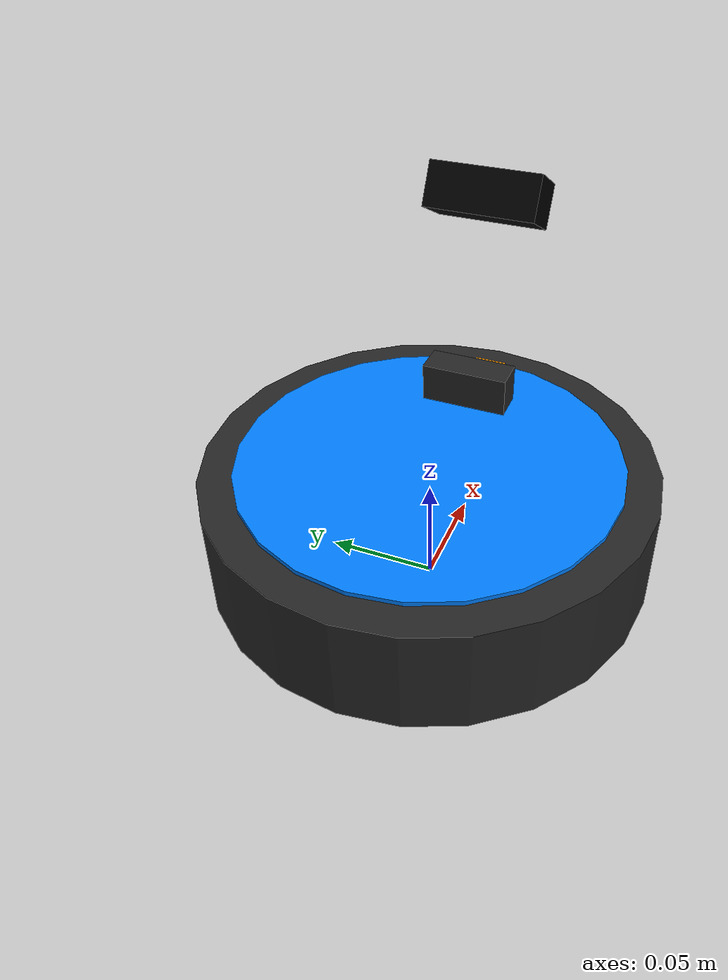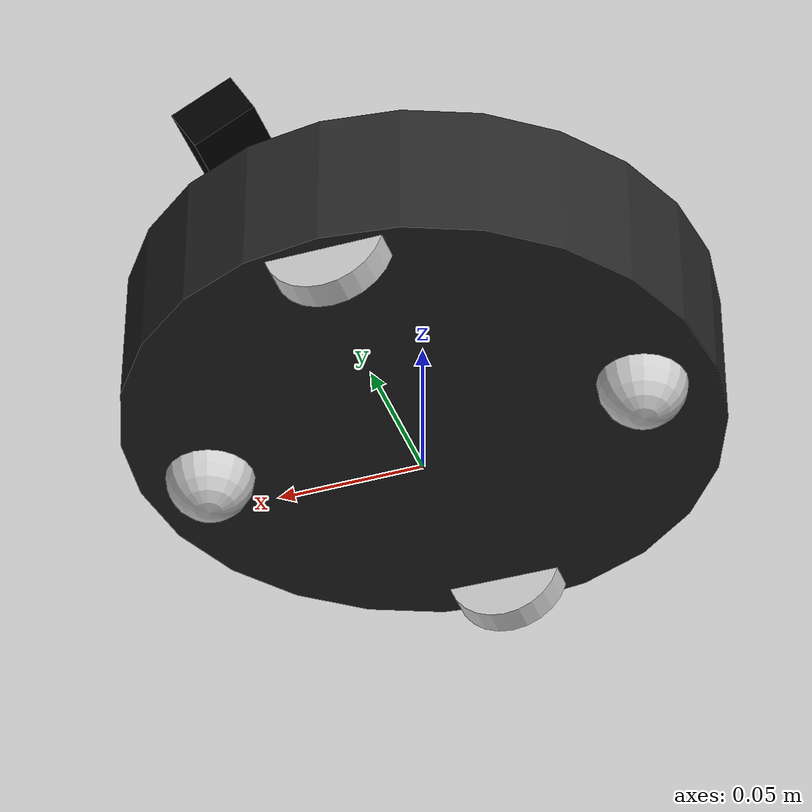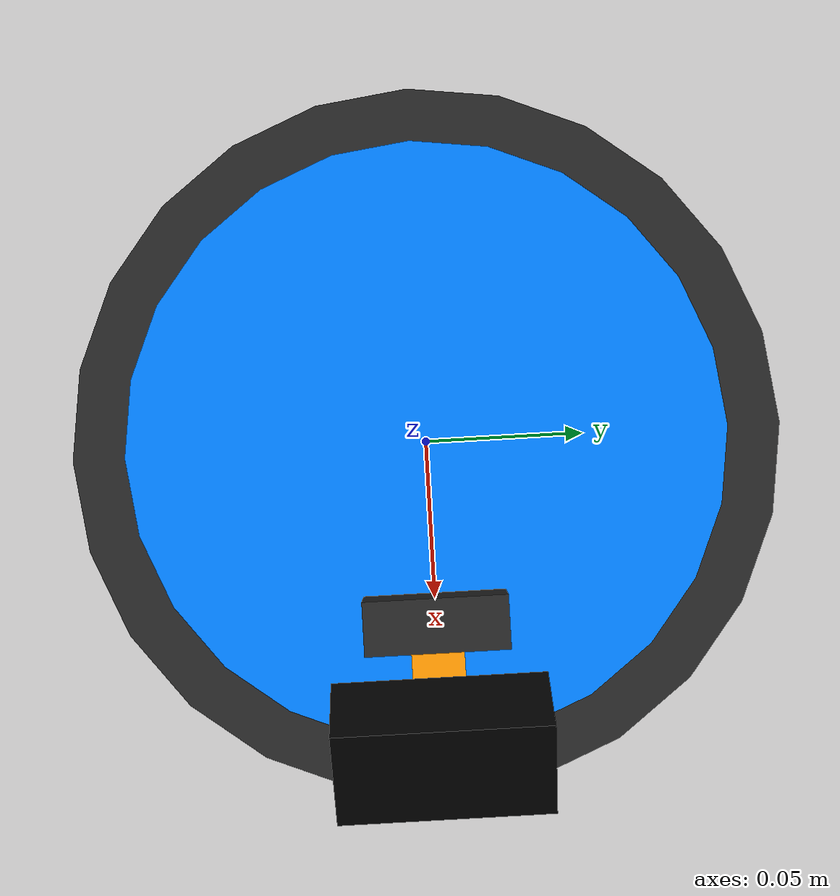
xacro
<?xml version="1.0"?>
<robot name="disc_robot" xmlns:xacro="http://www.ros.org/wiki/xacro">

  <!-- Include properties and gazebo macros -->
  <xacro:include filename="disc_robot_properties.xacro" />
  <xacro:include filename="disc_robot_gazebo.xacro" />

  <!-- Helper Inertia Macros -->
  <xacro:macro name="cylinder_inertia" params="m r h">
    <inertial>
      <mass value="${m}" />
      <origin xyz="0 0 0" rpy="0 0 0" />
      <inertia ixx="${(m/12.0) * (3.0*r*r + h*h)}" ixy="0.0" ixz="0.0"
               iyy="${(m/12.0) * (3.0*r*r + h*h)}" iyz="0.0"
               izz="${(m/2.0) * (r*r)}" />
    </inertial>
  </xacro:macro>

  <xacro:macro name="sphere_inertia" params="m r">
    <inertial>
      <mass value="${m}" />
      <origin xyz="0 0 0" rpy="0 0 0" />
      <inertia ixx="${(2.0/5.0) * m * r * r}" ixy="0.0" ixz="0.0"
               iyy="${(2.0/5.0) * m * r * r}" iyz="0.0"
               izz="${(2.0/5.0) * m * r * r}" />
    </inertial>
  </xacro:macro>

  <!-- base_footprint standard ROS reference frame on the ground below the robot center -->
  <link name="base_footprint" />

  <!-- base_link main cylinder body of the vacuum cleaner robot -->
  <link name="base_link">
    <!-- Visual representation of the robot body -->
    <visual>
      <origin xyz="0 0 0" rpy="0 0 0" />
      <geometry>
        <cylinder radius="${robot_radius}" length="${robot_height}" />
      </geometry>
      <material name="dark_grey" />
    </visual>

    <!-- Collision geometry -->
    <collision>
      <origin xyz="0 0 0" rpy="0 0 0" />
      <geometry>
        <cylinder radius="${robot_radius}" length="${robot_height}" />
      </geometry>
    </collision>

    <!-- Inertial properties -->
    <xacro:cylinder_inertia m="${robot_mass}" r="${robot_radius}" h="${robot_height}" />
  </link>

  <!-- Joint connecting base_footprint to base_link -->
  <joint name="base_joint" type="fixed">
    <parent link="base_footprint" />
    <child link="base_link" />
    <!-- Raised by ground_clearance so bottom does not scrape the ground -->
    <origin xyz="0 0 ${robot_height / 2.0 + ground_clearance}" rpy="0 0 0" />
  </joint>

  <!-- Aesthetic accents & bunny ears -->

  <!-- LED Ring on top of the robot -->
  <link name="led_ring_link">
    <visual>
      <origin xyz="0 0 0" rpy="0 0 0" />
      <geometry>
        <cylinder radius="${robot_radius * 0.85}" length="0.002" />
      </geometry>
      <material name="electric_blue" />
    </visual>
  </link>

  <joint name="led_ring_joint" type="fixed">
    <parent link="base_link" />
    <child link="led_ring_link" />
    <!-- Positioned just on top of the base cylinder -->
    <origin xyz="0 0 ${robot_height / 2.0 + 0.001}" rpy="0 0 0" />
  </joint>

  <!-- Heading indicator (Forward direction pointer) -->
  <link name="heading_indicator_link">
    <visual>
      <origin xyz="0 0 0" rpy="0 0 0" />
      <geometry>
        <box size="${robot_radius * 0.3} 0.015 0.002" />
      </geometry>
      <material name="amber" />
    </visual>
  </link>

  <joint name="heading_indicator_joint" type="fixed">
    <parent link="base_link" />
    <child link="heading_indicator_link" />
    <!-- Positioned on the front edge pointing along the x-axis -->
    <origin xyz="${robot_radius * 0.7} 0 ${robot_height / 2.0 + 0.002}" rpy="0 0 0" />
  </joint>

  <!-- Virtual lidar frame used by camera_based_lidar node output -->
  <link name="lidar_front_link" />

  <joint name="base_footprint_to_lidar_front_joint" type="fixed">
    <parent link="base_footprint" />
    <child link="lidar_front_link" />
    <origin xyz="0.10 0 0" rpy="0 0 0" />
  </joint>

  <!-- Camera system (ported from racer) -->
  <link name="ipm_ground_virtuallink" />

  <joint name="base_footprint_to_ipm_ground_joint" type="fixed">
    <parent link="base_footprint" />
    <child link="ipm_ground_virtuallink" />
    <origin xyz="0.10 0 0" rpy="0 0 0" />
  </joint>

  <link name="camera_stack_link">
    <visual>
      <origin xyz="0 0 0" rpy="0 0 0" />
      <geometry>
        <box size="${camera_stack_length} ${camera_stack_width} ${camera_stack_height}" />
      </geometry>
      <material name="dark_grey" />
    </visual>
  </link>

  <joint name="base_link_to_camera_stack_joint" type="fixed">
    <parent link="base_link" />
    <child link="camera_stack_link" />
    <origin xyz="${robot_radius * 0.5} 0 ${robot_height / 2.0}" rpy="0 0 0" />
  </joint>

  <link name="camera_high_link">
    <visual>
      <origin xyz="0 0 0" rpy="0 0 0" />
      <geometry>
        <box size="${camera_length} ${camera_width} ${camera_height}" />
      </geometry>
      <material name="black" />
    </visual>
  </link>

  <joint name="camera_stack_to_camera_high_joint" type="fixed">
    <parent link="camera_stack_link" />
    <child link="camera_high_link" />
    <origin
      xyz="${(camera_stack_length / 2.0) + (camera_length / 2.0)} 0 ${camera_high_ground_height - (robot_height + ground_clearance + camera_stack_height)}"
      rpy="0 0.50 0" />
  </joint>

  <!-- Drive Wheels -->
  <xacro:macro name="wheel" params="prefix y_dir">
    <link name="${prefix}_wheel_link">
      <visual>
        <origin xyz="0 0 0" rpy="0 0 0" />
        <geometry>
          <cylinder radius="${wheel_radius}" length="${wheel_width}" />
        </geometry>
        <material name="light_grey" />
      </visual>
      <collision>
        <origin xyz="0 0 0" rpy="0 0 0" />
        <geometry>
          <cylinder radius="${wheel_radius}" length="${wheel_width}" />
        </geometry>
      </collision>
      <xacro:cylinder_inertia m="${wheel_mass}" r="${wheel_radius}" h="${wheel_width}" />
    </link>

    <joint name="${prefix}_wheel_joint" type="continuous">
      <parent link="base_link" />
      <child link="${prefix}_wheel_link" />
      <!-- Positioned on the side, and lowered so it touches the ground -->
      <origin xyz="0 ${y_dir * wheel_yg} ${-robot_height / 2.0 - ground_clearance + wheel_radius}" rpy="${-pi/2} 0 0" />
      <axis xyz="0 0 1" />
    </joint>
  </xacro:macro>

  <xacro:wheel prefix="left" y_dir="1" />
  <xacro:wheel prefix="right" y_dir="-1" />

  <!-- Caster Wheels -->
  <xacro:macro name="caster" params="prefix x_dir">
    <link name="${prefix}_caster_link">
      <visual>
        <origin xyz="0 0 0" rpy="0 0 0" />
        <geometry>
          <sphere radius="${caster_radius}" />
        </geometry>
        <material name="light_grey" />
      </visual>
      <collision>
        <origin xyz="0 0 0" rpy="0 0 0" />
        <geometry>
          <sphere radius="${caster_radius}" />
        </geometry>
      </collision>
      <xacro:sphere_inertia m="${caster_mass}" r="${caster_radius}" />
    </link>

    <joint name="${prefix}_caster_joint" type="fixed">
      <parent link="base_link" />
      <child link="${prefix}_caster_link" />
      <!-- Positioned at front/back along x-axis, at the bottom of the body cylinder -->
      <origin xyz="${x_dir * 0.075} 0 ${-robot_height / 2.0 - ground_clearance + caster_radius}" rpy="0 0 0" />
    </joint>
  </xacro:macro>

  <xacro:caster prefix="front" x_dir="1" />
  <xacro:caster prefix="back" x_dir="-1" />

</robot>

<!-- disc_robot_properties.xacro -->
<robot xmlns:xacro="http://www.ros.org/wiki/xacro">

  <!--materials-->
  <material name="dark_grey">
    <color rgba="0.15 0.15 0.15 1.0" />
  </material>

  <material name="light_grey">
    <color rgba="0.8 0.8 0.8 1.0" />
  </material>

  <material name="electric_blue">
    <color rgba="0.0 0.5 1.0 1.0" />
  </material>

  <material name="amber">
    <color rgba="1.0 0.6 0.0 1.0" />
  </material>

  <material name="white">
    <color rgba="1.0 1.0 1.0 1.0" />
  </material>

  <material name="black">
    <color rgba="0.0 0.0 0.0 1.0" />
  </material>

  <!-- Robot Body Properties -->
  <xacro:property name="robot_radius" value="0.10" />
  <xacro:property name="robot_height" value="0.05" />
  <xacro:property name="robot_mass" value="2.0" />

  <!-- Wheel Properties -->
  <xacro:property name="wheel_radius" value="0.02" />
  <xacro:property name="wheel_width" value="0.01" />
  <xacro:property name="wheel_mass" value="0.05" />
  <xacro:property name="wheel_yg" value="0.09" />

  <!-- Caster properties -->
  <xacro:property name="caster_radius" value="0.015" />
  <xacro:property name="caster_mass" value="0.02" />
  <xacro:property name="ground_clearance" value="0.015" />

  <!-- Camera properties -->
  <xacro:property name="camera_hz" value="30" />
  <xacro:property name="camera_fov" value="1.089" />
  <xacro:property name="camera_resolution_width" value="640" />
  <xacro:property name="camera_resolution_height" value="480" />
  <xacro:property name="camera_high_ground_height" value="0.20" />
  <xacro:property name="camera_length" value="0.025" />
  <xacro:property name="camera_width" value="0.05" />
  <xacro:property name="camera_height" value="0.02" />
  <xacro:property name="camera_weight" value="0.005" />
  <xacro:property name="camera_stack_length" value="0.015" />
  <xacro:property name="camera_stack_width" value="0.04" />
  <xacro:property name="camera_stack_height" value="0.04" />
  <xacro:property name="camera_stack_weight" value="0.02" />
</robot>
